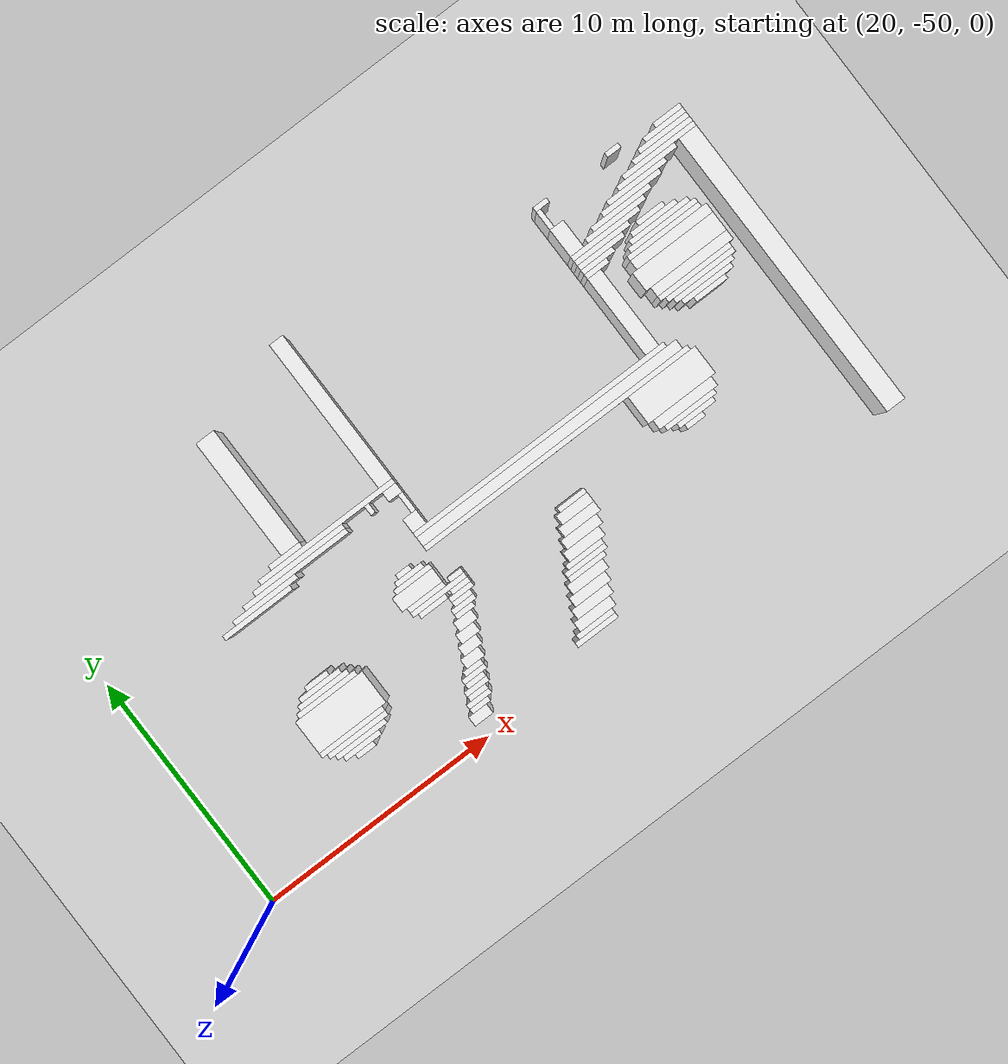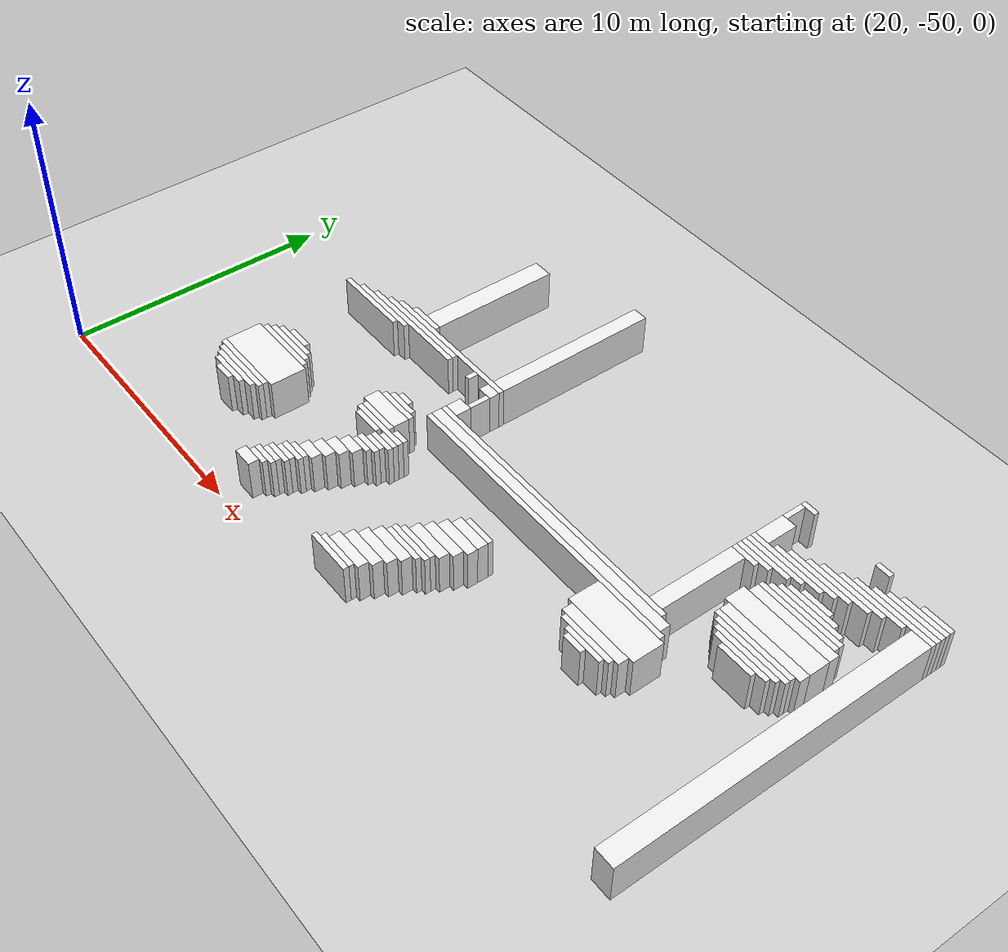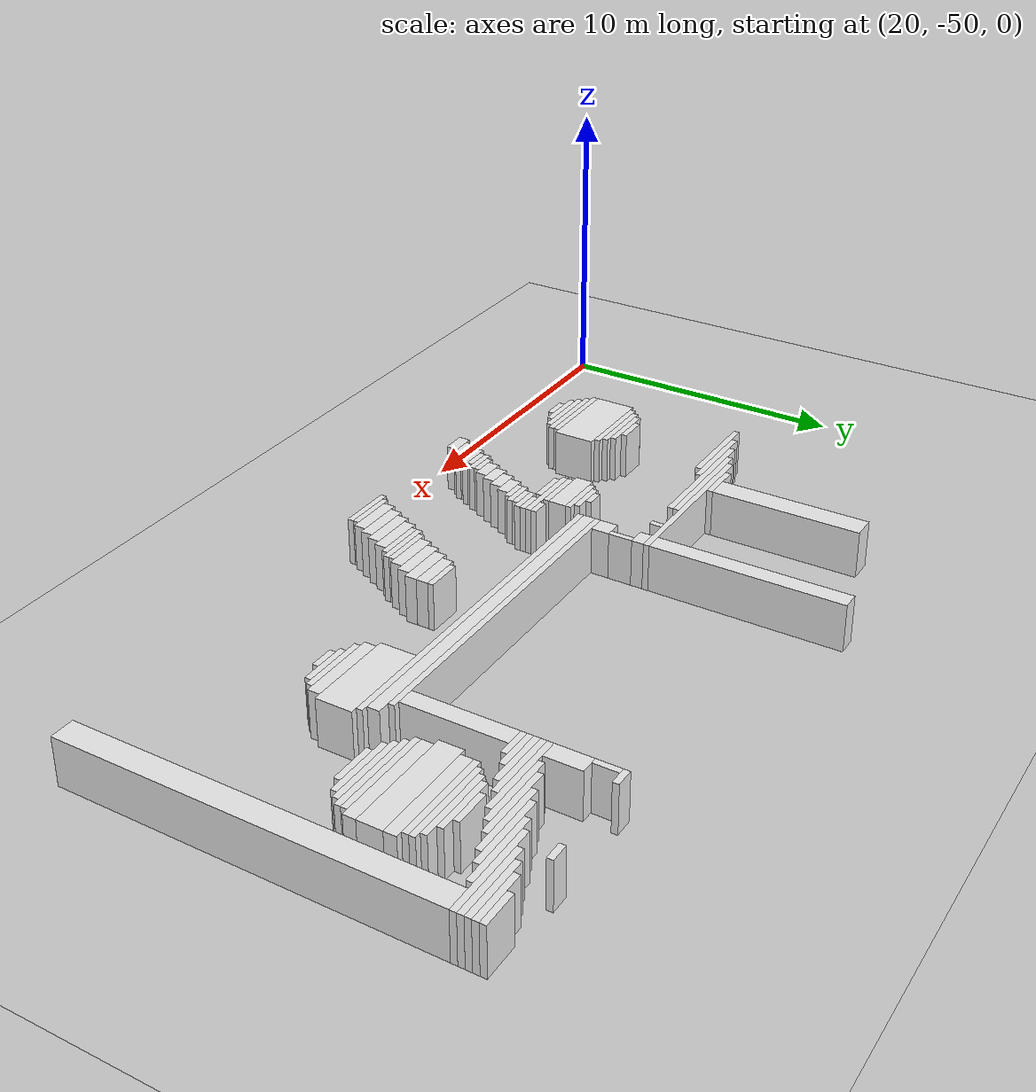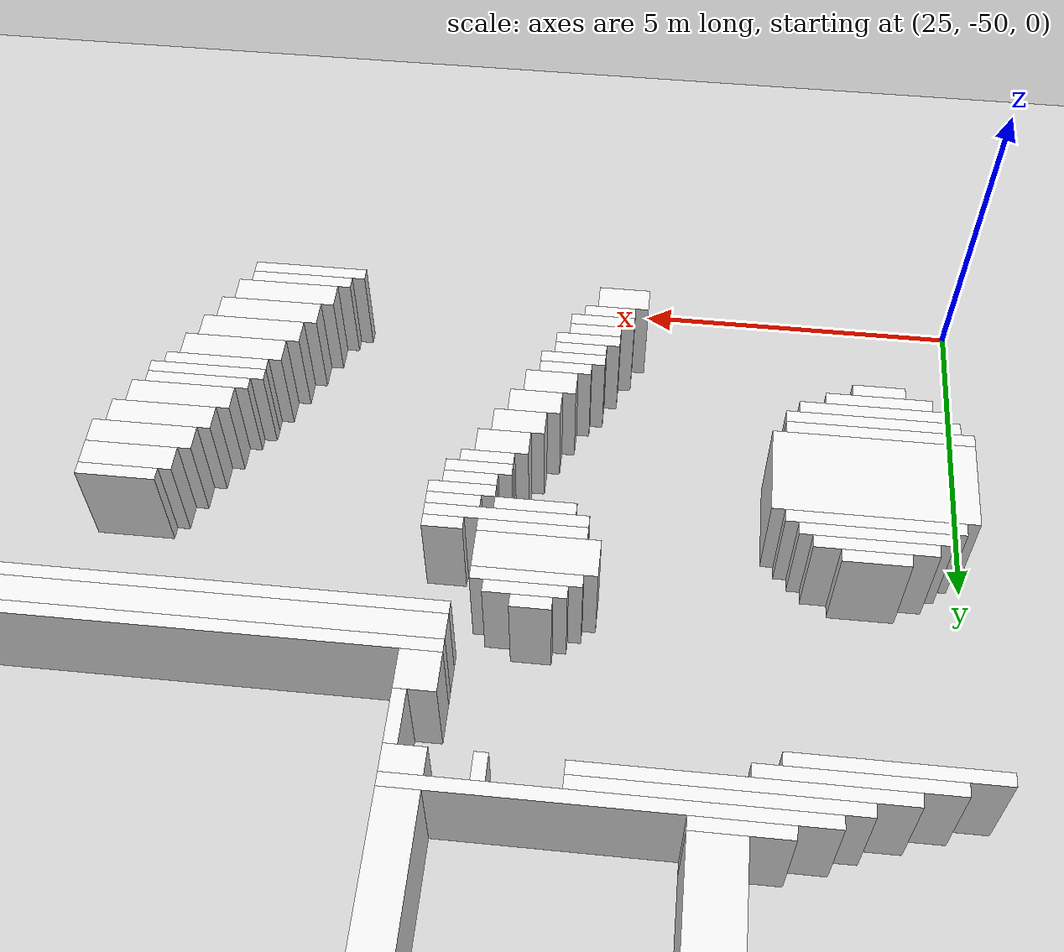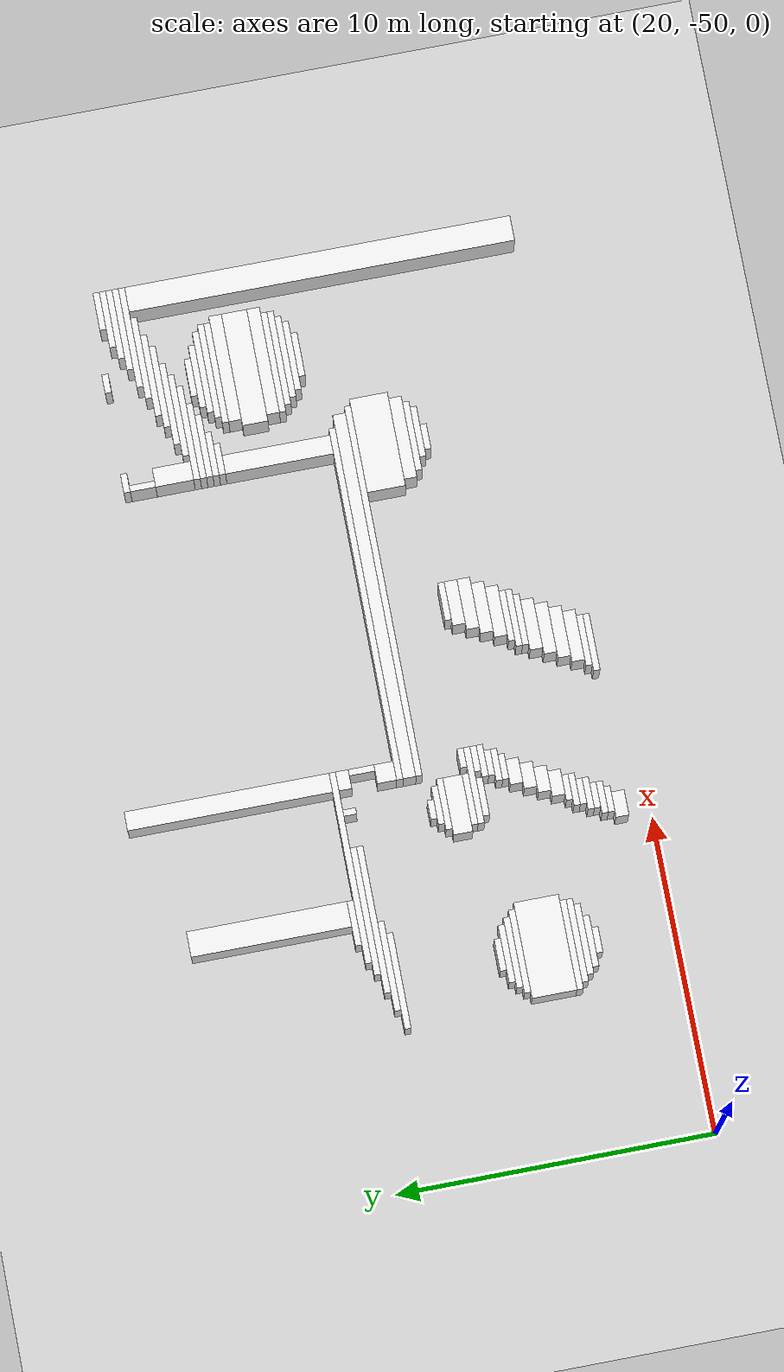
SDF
<sdf version="1.7">
 <world name="default">
  <model name="ground_plane">
   <static>1</static>
   <link name="link">
    <collision name="collision">
     <geometry><plane><normal>0 0 1</normal><size>120 120</size></plane></geometry>
    </collision>
    <visual name="visual">
     <geometry><plane><normal>0 0 1</normal><size>120 120</size></plane></geometry>
     <material>
      <script><uri>file://media/materials/scripts/gazebo.material</uri><name>Gazebo/Grey</name></script>
     </material>
    </visual>
   </link>
  </model>
  <model name="random_complex_01_model">
   <static>1</static>
   <link name="obs_3151">
    <pose>43.1000 -35.9000 0.8000 0 0 0</pose>
    <collision name="obs_3151_col"><geometry><box><size>0.6000 0.2000 1.6000</size></box></geometry></collision>
    <visual name="obs_3151_vis">
     <geometry><box><size>0.6000 0.2000 1.6000</size></box></geometry>
     <material>
      <script><uri>file://media/materials/scripts/gazebo.material</uri><name>Gazebo/White</name></script>
     </material>
    </visual>
   </link>
   <link name="obs_3152">
    <pose>46.3000 -35.9000 0.8000 0 0 0</pose>
    <collision name="obs_3152_col"><geometry><box><size>0.6000 0.2000 1.6000</size></box></geometry></collision>
    <visual name="obs_3152_vis">
     <geometry><box><size>0.6000 0.2000 1.6000</size></box></geometry>
     <material>
      <script><uri>file://media/materials/scripts/gazebo.material</uri><name>Gazebo/White</name></script>
     </material>
    </visual>
   </link>
   <link name="obs_3161">
    <pose>48.6000 -36.1000 0.8000 0 0 0</pose>
    <collision name="obs_3161_col"><geometry><box><size>1.2000 0.2000 1.6000</size></box></geometry></collision>
    <visual name="obs_3161_vis">
     <geometry><box><size>1.2000 0.2000 1.6000</size></box></geometry>
     <material>
      <script><uri>file://media/materials/scripts/gazebo.material</uri><name>Gazebo/White</name></script>
     </material>
    </visual>
   </link>
   <link name="obs_3167">
    <pose>48.3000 -36.3000 0.8000 0 0 0</pose>
    <collision name="obs_3167_col"><geometry><box><size>1.8000 0.2000 1.6000</size></box></geometry></collision>
    <visual name="obs_3167_vis">
     <geometry><box><size>1.8000 0.2000 1.6000</size></box></geometry>
     <material>
      <script><uri>file://media/materials/scripts/gazebo.material</uri><name>Gazebo/White</name></script>
     </material>
    </visual>
   </link>
   <link name="obs_3173">
    <pose>48.1000 -36.5000 0.8000 0 0 0</pose>
    <collision name="obs_3173_col"><geometry><box><size>2.2000 0.2000 1.6000</size></box></geometry></collision>
    <visual name="obs_3173_vis">
     <geometry><box><size>2.2000 0.2000 1.6000</size></box></geometry>
     <material>
      <script><uri>file://media/materials/scripts/gazebo.material</uri><name>Gazebo/White</name></script>
     </material>
    </visual>
   </link>
   <link name="obs_3174">
    <pose>42.9000 -36.4000 0.8000 0 0 0</pose>
    <collision name="obs_3174_col"><geometry><box><size>0.2000 0.8000 1.6000</size></box></geometry></collision>
    <visual name="obs_3174_vis">
     <geometry><box><size>0.2000 0.8000 1.6000</size></box></geometry>
     <material>
      <script><uri>file://media/materials/scripts/gazebo.material</uri><name>Gazebo/White</name></script>
     </material>
    </visual>
   </link>
   <link name="obs_3181">
    <pose>47.9000 -36.7000 0.8000 0 0 0</pose>
    <collision name="obs_3181_col"><geometry><box><size>2.6000 0.2000 1.6000</size></box></geometry></collision>
    <visual name="obs_3181_vis">
     <geometry><box><size>2.6000 0.2000 1.6000</size></box></geometry>
     <material>
      <script><uri>file://media/materials/scripts/gazebo.material</uri><name>Gazebo/White</name></script>
     </material>
    </visual>
   </link>
   <link name="obs_3188">
    <pose>47.6000 -36.9000 0.8000 0 0 0</pose>
    <collision name="obs_3188_col"><geometry><box><size>3.2000 0.2000 1.6000</size></box></geometry></collision>
    <visual name="obs_3188_vis">
     <geometry><box><size>3.2000 0.2000 1.6000</size></box></geometry>
     <material>
      <script><uri>file://media/materials/scripts/gazebo.material</uri><name>Gazebo/White</name></script>
     </material>
    </visual>
   </link>
   <link name="obs_3193">
    <pose>46.9000 -37.1000 0.8000 0 0 0</pose>
    <collision name="obs_3193_col"><geometry><box><size>2.6000 0.2000 1.6000</size></box></geometry></collision>
    <visual name="obs_3193_vis">
     <geometry><box><size>2.6000 0.2000 1.6000</size></box></geometry>
     <material>
      <script><uri>file://media/materials/scripts/gazebo.material</uri><name>Gazebo/White</name></script>
     </material>
    </visual>
   </link>
   <link name="obs_3202">
    <pose>46.3000 -37.3000 0.8000 0 0 0</pose>
    <collision name="obs_3202_col"><geometry><box><size>2.6000 0.2000 1.6000</size></box></geometry></collision>
    <visual name="obs_3202_vis">
     <geometry><box><size>2.6000 0.2000 1.6000</size></box></geometry>
     <material>
      <script><uri>file://media/materials/scripts/gazebo.material</uri><name>Gazebo/White</name></script>
     </material>
    </visual>
   </link>
   <link name="obs_3209">
    <pose>45.9000 -37.5000 0.8000 0 0 0</pose>
    <collision name="obs_3209_col"><geometry><box><size>2.6000 0.2000 1.6000</size></box></geometry></collision>
    <visual name="obs_3209_vis">
     <geometry><box><size>2.6000 0.2000 1.6000</size></box></geometry>
     <material>
      <script><uri>file://media/materials/scripts/gazebo.material</uri><name>Gazebo/White</name></script>
     </material>
    </visual>
   </link>
   <link name="obs_3216">
    <pose>45.3000 -37.7000 0.8000 0 0 0</pose>
    <collision name="obs_3216_col"><geometry><box><size>2.6000 0.2000 1.6000</size></box></geometry></collision>
    <visual name="obs_3216_vis">
     <geometry><box><size>2.6000 0.2000 1.6000</size></box></geometry>
     <material>
      <script><uri>file://media/materials/scripts/gazebo.material</uri><name>Gazebo/White</name></script>
     </material>
    </visual>
   </link>
   <link name="obs_3217">
    <pose>43.1000 -37.4000 0.8000 0 0 0</pose>
    <collision name="obs_3217_col"><geometry><box><size>0.6000 1.2000 1.6000</size></box></geometry></collision>
    <visual name="obs_3217_vis">
     <geometry><box><size>0.6000 1.2000 1.6000</size></box></geometry>
     <material>
      <script><uri>file://media/materials/scripts/gazebo.material</uri><name>Gazebo/White</name></script>
     </material>
    </visual>
   </link>
   <link name="obs_3225">
    <pose>44.9000 -37.9000 0.8000 0 0 0</pose>
    <collision name="obs_3225_col"><geometry><box><size>2.6000 0.2000 1.6000</size></box></geometry></collision>
    <visual name="obs_3225_vis">
     <geometry><box><size>2.6000 0.2000 1.6000</size></box></geometry>
     <material>
      <script><uri>file://media/materials/scripts/gazebo.material</uri><name>Gazebo/White</name></script>
     </material>
    </visual>
   </link>
   <link name="obs_3234">
    <pose>44.3000 -38.1000 0.8000 0 0 0</pose>
    <collision name="obs_3234_col"><geometry><box><size>3.0000 0.2000 1.6000</size></box></geometry></collision>
    <visual name="obs_3234_vis">
     <geometry><box><size>3.0000 0.2000 1.6000</size></box></geometry>
     <material>
      <script><uri>file://media/materials/scripts/gazebo.material</uri><name>Gazebo/White</name></script>
     </material>
    </visual>
   </link>
   <link name="obs_3242">
    <pose>44.0000 -38.3000 0.8000 0 0 0</pose>
    <collision name="obs_3242_col"><geometry><box><size>2.4000 0.2000 1.6000</size></box></geometry></collision>
    <visual name="obs_3242_vis">
     <geometry><box><size>2.4000 0.2000 1.6000</size></box></geometry>
     <material>
      <script><uri>file://media/materials/scripts/gazebo.material</uri><name>Gazebo/White</name></script>
     </material>
    </visual>
   </link>
   <link name="obs_3251">
    <pose>43.8000 -38.5000 0.8000 0 0 0</pose>
    <collision name="obs_3251_col"><geometry><box><size>2.0000 0.2000 1.6000</size></box></geometry></collision>
    <visual name="obs_3251_vis">
     <geometry><box><size>2.0000 0.2000 1.6000</size></box></geometry>
     <material>
      <script><uri>file://media/materials/scripts/gazebo.material</uri><name>Gazebo/White</name></script>
     </material>
    </visual>
   </link>
   <link name="obs_3252">
    <pose>46.0000 -38.5000 0.8000 0 0 0</pose>
    <collision name="obs_3252_col"><geometry><box><size>1.2000 0.2000 1.6000</size></box></geometry></collision>
    <visual name="obs_3252_vis">
     <geometry><box><size>1.2000 0.2000 1.6000</size></box></geometry>
     <material>
      <script><uri>file://media/materials/scripts/gazebo.material</uri><name>Gazebo/White</name></script>
     </material>
    </visual>
   </link>
   <link name="obs_3256">
    <pose>43.5000 -38.7000 0.8000 0 0 0</pose>
    <collision name="obs_3256_col"><geometry><box><size>1.4000 0.2000 1.6000</size></box></geometry></collision>
    <visual name="obs_3256_vis">
     <geometry><box><size>1.4000 0.2000 1.6000</size></box></geometry>
     <material>
      <script><uri>file://media/materials/scripts/gazebo.material</uri><name>Gazebo/White</name></script>
     </material>
    </visual>
   </link>
   <link name="obs_3257">
    <pose>46.0000 -38.7000 0.8000 0 0 0</pose>
    <collision name="obs_3257_col"><geometry><box><size>2.0000 0.2000 1.6000</size></box></geometry></collision>
    <visual name="obs_3257_vis">
     <geometry><box><size>2.0000 0.2000 1.6000</size></box></geometry>
     <material>
      <script><uri>file://media/materials/scripts/gazebo.material</uri><name>Gazebo/White</name></script>
     </material>
    </visual>
   </link>
   <link name="obs_3264">
    <pose>43.3000 -38.9000 0.8000 0 0 0</pose>
    <collision name="obs_3264_col"><geometry><box><size>1.0000 0.2000 1.6000</size></box></geometry></collision>
    <visual name="obs_3264_vis">
     <geometry><box><size>1.0000 0.2000 1.6000</size></box></geometry>
     <material>
      <script><uri>file://media/materials/scripts/gazebo.material</uri><name>Gazebo/White</name></script>
     </material>
    </visual>
   </link>
   <link name="obs_3265">
    <pose>46.1000 -38.9000 0.8000 0 0 0</pose>
    <collision name="obs_3265_col"><geometry><box><size>2.6000 0.2000 1.6000</size></box></geometry></collision>
    <visual name="obs_3265_vis">
     <geometry><box><size>2.6000 0.2000 1.6000</size></box></geometry>
     <material>
      <script><uri>file://media/materials/scripts/gazebo.material</uri><name>Gazebo/White</name></script>
     </material>
    </visual>
   </link>
   <link name="obs_3271">
    <pose>46.1000 -39.1000 0.8000 0 0 0</pose>
    <collision name="obs_3271_col"><geometry><box><size>3.0000 0.2000 1.6000</size></box></geometry></collision>
    <visual name="obs_3271_vis">
     <geometry><box><size>3.0000 0.2000 1.6000</size></box></geometry>
     <material>
      <script><uri>file://media/materials/scripts/gazebo.material</uri><name>Gazebo/White</name></script>
     </material>
    </visual>
   </link>
   <link name="obs_3279">
    <pose>46.0000 -39.3000 0.8000 0 0 0</pose>
    <collision name="obs_3279_col"><geometry><box><size>3.2000 0.2000 1.6000</size></box></geometry></collision>
    <visual name="obs_3279_vis">
     <geometry><box><size>3.2000 0.2000 1.6000</size></box></geometry>
     <material>
      <script><uri>file://media/materials/scripts/gazebo.material</uri><name>Gazebo/White</name></script>
     </material>
    </visual>
   </link>
   <link name="obs_3288">
    <pose>46.1000 -39.6000 0.8000 0 0 0</pose>
    <collision name="obs_3288_col"><geometry><box><size>3.4000 0.4000 1.6000</size></box></geometry></collision>
    <visual name="obs_3288_vis">
     <geometry><box><size>3.4000 0.4000 1.6000</size></box></geometry>
     <material>
      <script><uri>file://media/materials/scripts/gazebo.material</uri><name>Gazebo/White</name></script>
     </material>
    </visual>
   </link>
   <link name="obs_3297">
    <pose>28.6000 -37.7000 0.8000 0 0 0</pose>
    <collision name="obs_3297_col"><geometry><box><size>0.8000 5.0000 1.6000</size></box></geometry></collision>
    <visual name="obs_3297_vis">
     <geometry><box><size>0.8000 5.0000 1.6000</size></box></geometry>
     <material>
      <script><uri>file://media/materials/scripts/gazebo.material</uri><name>Gazebo/White</name></script>
     </material>
    </visual>
   </link>
   <link name="obs_3304">
    <pose>32.7000 -37.2000 0.8000 0 0 0</pose>
    <collision name="obs_3304_col"><geometry><box><size>0.6000 6.4000 1.6000</size></box></geometry></collision>
    <visual name="obs_3304_vis">
     <geometry><box><size>0.6000 6.4000 1.6000</size></box></geometry>
     <material>
      <script><uri>file://media/materials/scripts/gazebo.material</uri><name>Gazebo/White</name></script>
     </material>
    </visual>
   </link>
   <link name="obs_3312">
    <pose>28.3000 -40.3000 0.8000 0 0 0</pose>
    <collision name="obs_3312_col"><geometry><box><size>1.4000 0.2000 1.6000</size></box></geometry></collision>
    <visual name="obs_3312_vis">
     <geometry><box><size>1.4000 0.2000 1.6000</size></box></geometry>
     <material>
      <script><uri>file://media/materials/scripts/gazebo.material</uri><name>Gazebo/White</name></script>
     </material>
    </visual>
   </link>
   <link name="obs_3313">
    <pose>46.0000 -40.2000 0.8000 0 0 0</pose>
    <collision name="obs_3313_col"><geometry><box><size>3.6000 0.8000 1.6000</size></box></geometry></collision>
    <visual name="obs_3313_vis">
     <geometry><box><size>3.6000 0.8000 1.6000</size></box></geometry>
     <material>
      <script><uri>file://media/materials/scripts/gazebo.material</uri><name>Gazebo/White</name></script>
     </material>
    </visual>
   </link>
   <link name="obs_3320">
    <pose>30.0000 -40.5000 0.8000 0 0 0</pose>
    <collision name="obs_3320_col"><geometry><box><size>6.0000 0.2000 1.6000</size></box></geometry></collision>
    <visual name="obs_3320_vis">
     <geometry><box><size>6.0000 0.2000 1.6000</size></box></geometry>
     <material>
      <script><uri>file://media/materials/scripts/gazebo.material</uri><name>Gazebo/White</name></script>
     </material>
    </visual>
   </link>
   <link name="obs_3330">
    <pose>28.6000 -40.7000 0.8000 0 0 0</pose>
    <collision name="obs_3330_col"><geometry><box><size>4.0000 0.2000 1.6000</size></box></geometry></collision>
    <visual name="obs_3330_vis">
     <geometry><box><size>4.0000 0.2000 1.6000</size></box></geometry>
     <material>
      <script><uri>file://media/materials/scripts/gazebo.material</uri><name>Gazebo/White</name></script>
     </material>
    </visual>
   </link>
   <link name="obs_3331">
    <pose>31.7000 -40.8000 0.8000 0 0 0</pose>
    <collision name="obs_3331_col"><geometry><box><size>0.2000 0.4000 1.6000</size></box></geometry></collision>
    <visual name="obs_3331_vis">
     <geometry><box><size>0.2000 0.4000 1.6000</size></box></geometry>
     <material>
      <script><uri>file://media/materials/scripts/gazebo.material</uri><name>Gazebo/White</name></script>
     </material>
    </visual>
   </link>
   <link name="obs_3332">
    <pose>32.7000 -40.8000 0.8000 0 0 0</pose>
    <collision name="obs_3332_col"><geometry><box><size>0.6000 0.4000 1.6000</size></box></geometry></collision>
    <visual name="obs_3332_vis">
     <geometry><box><size>0.6000 0.4000 1.6000</size></box></geometry>
     <material>
      <script><uri>file://media/materials/scripts/gazebo.material</uri><name>Gazebo/White</name></script>
     </material>
    </visual>
   </link>
   <link name="obs_3333">
    <pose>46.1000 -40.8000 0.8000 0 0 0</pose>
    <collision name="obs_3333_col"><geometry><box><size>3.4000 0.4000 1.6000</size></box></geometry></collision>
    <visual name="obs_3333_vis">
     <geometry><box><size>3.4000 0.4000 1.6000</size></box></geometry>
     <material>
      <script><uri>file://media/materials/scripts/gazebo.material</uri><name>Gazebo/White</name></script>
     </material>
    </visual>
   </link>
   <link name="obs_3339">
    <pose>28.3000 -40.9000 0.8000 0 0 0</pose>
    <collision name="obs_3339_col"><geometry><box><size>4.6000 0.2000 1.6000</size></box></geometry></collision>
    <visual name="obs_3339_vis">
     <geometry><box><size>4.6000 0.2000 1.6000</size></box></geometry>
     <material>
      <script><uri>file://media/materials/scripts/gazebo.material</uri><name>Gazebo/White</name></script>
     </material>
    </visual>
   </link>
   <link name="obs_3346">
    <pose>26.8000 -41.1000 0.8000 0 0 0</pose>
    <collision name="obs_3346_col"><geometry><box><size>2.8000 0.2000 1.6000</size></box></geometry></collision>
    <visual name="obs_3346_vis">
     <geometry><box><size>2.8000 0.2000 1.6000</size></box></geometry>
     <material>
      <script><uri>file://media/materials/scripts/gazebo.material</uri><name>Gazebo/White</name></script>
     </material>
    </visual>
   </link>
   <link name="obs_3347">
    <pose>46.0000 -41.1000 0.8000 0 0 0</pose>
    <collision name="obs_3347_col"><geometry><box><size>3.2000 0.2000 1.6000</size></box></geometry></collision>
    <visual name="obs_3347_vis">
     <geometry><box><size>3.2000 0.2000 1.6000</size></box></geometry>
     <material>
      <script><uri>file://media/materials/scripts/gazebo.material</uri><name>Gazebo/White</name></script>
     </material>
    </visual>
   </link>
   <link name="obs_3352">
    <pose>26.3000 -41.3000 0.8000 0 0 0</pose>
    <collision name="obs_3352_col"><geometry><box><size>3.0000 0.2000 1.6000</size></box></geometry></collision>
    <visual name="obs_3352_vis">
     <geometry><box><size>3.0000 0.2000 1.6000</size></box></geometry>
     <material>
      <script><uri>file://media/materials/scripts/gazebo.material</uri><name>Gazebo/White</name></script>
     </material>
    </visual>
   </link>
   <link name="obs_3353">
    <pose>46.1000 -41.3000 0.8000 0 0 0</pose>
    <collision name="obs_3353_col"><geometry><box><size>3.0000 0.2000 1.6000</size></box></geometry></collision>
    <visual name="obs_3353_vis">
     <geometry><box><size>3.0000 0.2000 1.6000</size></box></geometry>
     <material>
      <script><uri>file://media/materials/scripts/gazebo.material</uri><name>Gazebo/White</name></script>
     </material>
    </visual>
   </link>
   <link name="obs_3361">
    <pose>46.1000 -41.5000 0.8000 0 0 0</pose>
    <collision name="obs_3361_col"><geometry><box><size>2.6000 0.2000 1.6000</size></box></geometry></collision>
    <visual name="obs_3361_vis">
     <geometry><box><size>2.6000 0.2000 1.6000</size></box></geometry>
     <material>
      <script><uri>file://media/materials/scripts/gazebo.material</uri><name>Gazebo/White</name></script>
     </material>
    </visual>
   </link>
   <link name="obs_3362">
    <pose>32.9000 -41.4000 0.8000 0 0 0</pose>
    <collision name="obs_3362_col"><geometry><box><size>0.2000 0.8000 1.6000</size></box></geometry></collision>
    <visual name="obs_3362_vis">
     <geometry><box><size>0.2000 0.8000 1.6000</size></box></geometry>
     <material>
      <script><uri>file://media/materials/scripts/gazebo.material</uri><name>Gazebo/White</name></script>
     </material>
    </visual>
   </link>
   <link name="obs_3368">
    <pose>46.1000 -41.7000 0.8000 0 0 0</pose>
    <collision name="obs_3368_col"><geometry><box><size>2.2000 0.2000 1.6000</size></box></geometry></collision>
    <visual name="obs_3368_vis">
     <geometry><box><size>2.2000 0.2000 1.6000</size></box></geometry>
     <material>
      <script><uri>file://media/materials/scripts/gazebo.material</uri><name>Gazebo/White</name></script>
     </material>
    </visual>
   </link>
   <link name="obs_3377">
    <pose>46.1000 -41.9000 0.8000 0 0 0</pose>
    <collision name="obs_3377_col"><geometry><box><size>1.4000 0.2000 1.6000</size></box></geometry></collision>
    <visual name="obs_3377_vis">
     <geometry><box><size>1.4000 0.2000 1.6000</size></box></geometry>
     <material>
      <script><uri>file://media/materials/scripts/gazebo.material</uri><name>Gazebo/White</name></script>
     </material>
    </visual>
   </link>
   <link name="obs_3385">
    <pose>43.1000 -40.7000 0.8000 0 0 0</pose>
    <collision name="obs_3385_col"><geometry><box><size>0.6000 3.4000 1.6000</size></box></geometry></collision>
    <visual name="obs_3385_vis">
     <geometry><box><size>0.6000 3.4000 1.6000</size></box></geometry>
     <material>
      <script><uri>file://media/materials/scripts/gazebo.material</uri><name>Gazebo/White</name></script>
     </material>
    </visual>
   </link>
   <link name="obs_3386">
    <pose>32.7000 -42.1000 0.8000 0 0 0</pose>
    <collision name="obs_3386_col"><geometry><box><size>0.6000 0.6000 1.6000</size></box></geometry></collision>
    <visual name="obs_3386_vis">
     <geometry><box><size>0.6000 0.6000 1.6000</size></box></geometry>
     <material>
      <script><uri>file://media/materials/scripts/gazebo.material</uri><name>Gazebo/White</name></script>
     </material>
    </visual>
   </link>
   <link name="obs_3402">
    <pose>38.0000 -42.5000 0.8000 0 0 0</pose>
    <collision name="obs_3402_col"><geometry><box><size>11.2000 0.2000 1.6000</size></box></geometry></collision>
    <visual name="obs_3402_vis">
     <geometry><box><size>11.2000 0.2000 1.6000</size></box></geometry>
     <material>
      <script><uri>file://media/materials/scripts/gazebo.material</uri><name>Gazebo/White</name></script>
     </material>
    </visual>
   </link>
   <link name="obs_3410">
    <pose>38.2000 -42.8000 0.8000 0 0 0</pose>
    <collision name="obs_3410_col"><geometry><box><size>11.6000 0.4000 1.6000</size></box></geometry></collision>
    <visual name="obs_3410_vis">
     <geometry><box><size>11.6000 0.4000 1.6000</size></box></geometry>
     <material>
      <script><uri>file://media/materials/scripts/gazebo.material</uri><name>Gazebo/White</name></script>
     </material>
    </visual>
   </link>
   <link name="obs_3421">
    <pose>38.3000 -43.1000 0.8000 0 0 0</pose>
    <collision name="obs_3421_col"><geometry><box><size>11.8000 0.2000 1.6000</size></box></geometry></collision>
    <visual name="obs_3421_vis">
     <geometry><box><size>11.8000 0.2000 1.6000</size></box></geometry>
     <material>
      <script><uri>file://media/materials/scripts/gazebo.material</uri><name>Gazebo/White</name></script>
     </material>
    </visual>
   </link>
   <link name="obs_3428">
    <pose>31.3000 -43.3000 0.8000 0 0 0</pose>
    <collision name="obs_3428_col"><geometry><box><size>0.6000 0.2000 1.6000</size></box></geometry></collision>
    <visual name="obs_3428_vis">
     <geometry><box><size>0.6000 0.2000 1.6000</size></box></geometry>
     <material>
      <script><uri>file://media/materials/scripts/gazebo.material</uri><name>Gazebo/White</name></script>
     </material>
    </visual>
   </link>
   <link name="obs_3433">
    <pose>31.4000 -43.5000 0.8000 0 0 0</pose>
    <collision name="obs_3433_col"><geometry><box><size>1.2000 0.2000 1.6000</size></box></geometry></collision>
    <visual name="obs_3433_vis">
     <geometry><box><size>1.2000 0.2000 1.6000</size></box></geometry>
     <material>
      <script><uri>file://media/materials/scripts/gazebo.material</uri><name>Gazebo/White</name></script>
     </material>
    </visual>
   </link>
   <link name="obs_3438">
    <pose>31.4000 -43.7000 0.8000 0 0 0</pose>
    <collision name="obs_3438_col"><geometry><box><size>1.6000 0.2000 1.6000</size></box></geometry></collision>
    <visual name="obs_3438_vis">
     <geometry><box><size>1.6000 0.2000 1.6000</size></box></geometry>
     <material>
      <script><uri>file://media/materials/scripts/gazebo.material</uri><name>Gazebo/White</name></script>
     </material>
    </visual>
   </link>
   <link name="obs_3448">
    <pose>42.9000 -43.8000 0.8000 0 0 0</pose>
    <collision name="obs_3448_col"><geometry><box><size>3.0000 1.2000 1.6000</size></box></geometry></collision>
    <visual name="obs_3448_vis">
     <geometry><box><size>3.0000 1.2000 1.6000</size></box></geometry>
     <material>
      <script><uri>file://media/materials/scripts/gazebo.material</uri><name>Gazebo/White</name></script>
     </material>
    </visual>
   </link>
   <link name="obs_3449">
    <pose>31.3000 -44.1000 0.8000 0 0 0</pose>
    <collision name="obs_3449_col"><geometry><box><size>1.8000 0.6000 1.6000</size></box></geometry></collision>
    <visual name="obs_3449_vis">
     <geometry><box><size>1.8000 0.6000 1.6000</size></box></geometry>
     <material>
      <script><uri>file://media/materials/scripts/gazebo.material</uri><name>Gazebo/White</name></script>
     </material>
    </visual>
   </link>
   <link name="obs_3454">
    <pose>26.5000 -44.5000 0.8000 0 0 0</pose>
    <collision name="obs_3454_col"><geometry><box><size>1.0000 0.2000 1.6000</size></box></geometry></collision>
    <visual name="obs_3454_vis">
     <geometry><box><size>1.0000 0.2000 1.6000</size></box></geometry>
     <material>
      <script><uri>file://media/materials/scripts/gazebo.material</uri><name>Gazebo/White</name></script>
     </material>
    </visual>
   </link>
   <link name="obs_3455">
    <pose>31.4000 -44.5000 0.8000 0 0 0</pose>
    <collision name="obs_3455_col"><geometry><box><size>1.6000 0.2000 1.6000</size></box></geometry></collision>
    <visual name="obs_3455_vis">
     <geometry><box><size>1.6000 0.2000 1.6000</size></box></geometry>
     <material>
      <script><uri>file://media/materials/scripts/gazebo.material</uri><name>Gazebo/White</name></script>
     </material>
    </visual>
   </link>
   <link name="obs_3456">
    <pose>32.7000 -44.5000 0.8000 0 0 0</pose>
    <collision name="obs_3456_col"><geometry><box><size>0.6000 0.2000 1.6000</size></box></geometry></collision>
    <visual name="obs_3456_vis">
     <geometry><box><size>0.6000 0.2000 1.6000</size></box></geometry>
     <material>
      <script><uri>file://media/materials/scripts/gazebo.material</uri><name>Gazebo/White</name></script>
     </material>
    </visual>
   </link>
   <link name="obs_3460">
    <pose>42.9000 -44.6000 0.8000 0 0 0</pose>
    <collision name="obs_3460_col"><geometry><box><size>2.6000 0.4000 1.6000</size></box></geometry></collision>
    <visual name="obs_3460_vis">
     <geometry><box><size>2.6000 0.4000 1.6000</size></box></geometry>
     <material>
      <script><uri>file://media/materials/scripts/gazebo.material</uri><name>Gazebo/White</name></script>
     </material>
    </visual>
   </link>
   <link name="obs_3461">
    <pose>26.5000 -44.7000 0.8000 0 0 0</pose>
    <collision name="obs_3461_col"><geometry><box><size>1.8000 0.2000 1.6000</size></box></geometry></collision>
    <visual name="obs_3461_vis">
     <geometry><box><size>1.8000 0.2000 1.6000</size></box></geometry>
     <material>
      <script><uri>file://media/materials/scripts/gazebo.material</uri><name>Gazebo/White</name></script>
     </material>
    </visual>
   </link>
   <link name="obs_3462">
    <pose>31.8000 -44.7000 0.8000 0 0 0</pose>
    <collision name="obs_3462_col"><geometry><box><size>2.4000 0.2000 1.6000</size></box></geometry></collision>
    <visual name="obs_3462_vis">
     <geometry><box><size>2.4000 0.2000 1.6000</size></box></geometry>
     <material>
      <script><uri>file://media/materials/scripts/gazebo.material</uri><name>Gazebo/White</name></script>
     </material>
    </visual>
   </link>
   <link name="obs_3468">
    <pose>26.5000 -44.9000 0.8000 0 0 0</pose>
    <collision name="obs_3468_col"><geometry><box><size>2.2000 0.2000 1.6000</size></box></geometry></collision>
    <visual name="obs_3468_vis">
     <geometry><box><size>2.2000 0.2000 1.6000</size></box></geometry>
     <material>
      <script><uri>file://media/materials/scripts/gazebo.material</uri><name>Gazebo/White</name></script>
     </material>
    </visual>
   </link>
   <link name="obs_3469">
    <pose>31.4000 -44.9000 0.8000 0 0 0</pose>
    <collision name="obs_3469_col"><geometry><box><size>1.2000 0.2000 1.6000</size></box></geometry></collision>
    <visual name="obs_3469_vis">
     <geometry><box><size>1.2000 0.2000 1.6000</size></box></geometry>
     <material>
      <script><uri>file://media/materials/scripts/gazebo.material</uri><name>Gazebo/White</name></script>
     </material>
    </visual>
   </link>
   <link name="obs_3470">
    <pose>32.6000 -44.9000 0.8000 0 0 0</pose>
    <collision name="obs_3470_col"><geometry><box><size>0.8000 0.2000 1.6000</size></box></geometry></collision>
    <visual name="obs_3470_vis">
     <geometry><box><size>0.8000 0.2000 1.6000</size></box></geometry>
     <material>
      <script><uri>file://media/materials/scripts/gazebo.material</uri><name>Gazebo/White</name></script>
     </material>
    </visual>
   </link>
   <link name="obs_3471">
    <pose>37.6000 -44.9000 0.8000 0 0 0</pose>
    <collision name="obs_3471_col"><geometry><box><size>1.2000 0.2000 1.6000</size></box></geometry></collision>
    <visual name="obs_3471_vis">
     <geometry><box><size>1.2000 0.2000 1.6000</size></box></geometry>
     <material>
      <script><uri>file://media/materials/scripts/gazebo.material</uri><name>Gazebo/White</name></script>
     </material>
    </visual>
   </link>
   <link name="obs_3472">
    <pose>42.9000 -44.9000 0.8000 0 0 0</pose>
    <collision name="obs_3472_col"><geometry><box><size>2.2000 0.2000 1.6000</size></box></geometry></collision>
    <visual name="obs_3472_vis">
     <geometry><box><size>2.2000 0.2000 1.6000</size></box></geometry>
     <material>
      <script><uri>file://media/materials/scripts/gazebo.material</uri><name>Gazebo/White</name></script>
     </material>
    </visual>
   </link>
   <link name="obs_3477">
    <pose>26.5000 -45.1000 0.8000 0 0 0</pose>
    <collision name="obs_3477_col"><geometry><box><size>2.6000 0.2000 1.6000</size></box></geometry></collision>
    <visual name="obs_3477_vis">
     <geometry><box><size>2.6000 0.2000 1.6000</size></box></geometry>
     <material>
      <script><uri>file://media/materials/scripts/gazebo.material</uri><name>Gazebo/White</name></script>
     </material>
    </visual>
   </link>
   <link name="obs_3478">
    <pose>32.5000 -45.1000 0.8000 0 0 0</pose>
    <collision name="obs_3478_col"><geometry><box><size>1.0000 0.2000 1.6000</size></box></geometry></collision>
    <visual name="obs_3478_vis">
     <geometry><box><size>1.0000 0.2000 1.6000</size></box></geometry>
     <material>
      <script><uri>file://media/materials/scripts/gazebo.material</uri><name>Gazebo/White</name></script>
     </material>
    </visual>
   </link>
   <link name="obs_3479">
    <pose>43.0000 -45.1000 0.8000 0 0 0</pose>
    <collision name="obs_3479_col"><geometry><box><size>1.6000 0.2000 1.6000</size></box></geometry></collision>
    <visual name="obs_3479_vis">
     <geometry><box><size>1.6000 0.2000 1.6000</size></box></geometry>
     <material>
      <script><uri>file://media/materials/scripts/gazebo.material</uri><name>Gazebo/White</name></script>
     </material>
    </visual>
   </link>
   <link name="obs_3480">
    <pose>37.5000 -45.2000 0.8000 0 0 0</pose>
    <collision name="obs_3480_col"><geometry><box><size>1.4000 0.4000 1.6000</size></box></geometry></collision>
    <visual name="obs_3480_vis">
     <geometry><box><size>1.4000 0.4000 1.6000</size></box></geometry>
     <material>
      <script><uri>file://media/materials/scripts/gazebo.material</uri><name>Gazebo/White</name></script>
     </material>
    </visual>
   </link>
   <link name="obs_3486">
    <pose>32.4000 -45.3000 0.8000 0 0 0</pose>
    <collision name="obs_3486_col"><geometry><box><size>0.8000 0.2000 1.6000</size></box></geometry></collision>
    <visual name="obs_3486_vis">
     <geometry><box><size>0.8000 0.2000 1.6000</size></box></geometry>
     <material>
      <script><uri>file://media/materials/scripts/gazebo.material</uri><name>Gazebo/White</name></script>
     </material>
    </visual>
   </link>
   <link name="obs_3487">
    <pose>42.8000 -45.3000 0.8000 0 0 0</pose>
    <collision name="obs_3487_col"><geometry><box><size>0.8000 0.2000 1.6000</size></box></geometry></collision>
    <visual name="obs_3487_vis">
     <geometry><box><size>0.8000 0.2000 1.6000</size></box></geometry>
     <material>
      <script><uri>file://media/materials/scripts/gazebo.material</uri><name>Gazebo/White</name></script>
     </material>
    </visual>
   </link>
   <link name="obs_3495">
    <pose>32.3000 -45.5000 0.8000 0 0 0</pose>
    <collision name="obs_3495_col"><geometry><box><size>1.0000 0.2000 1.6000</size></box></geometry></collision>
    <visual name="obs_3495_vis">
     <geometry><box><size>1.0000 0.2000 1.6000</size></box></geometry>
     <material>
      <script><uri>file://media/materials/scripts/gazebo.material</uri><name>Gazebo/White</name></script>
     </material>
    </visual>
   </link>
   <link name="obs_3497">
    <pose>37.4000 -45.6000 0.8000 0 0 0</pose>
    <collision name="obs_3497_col"><geometry><box><size>1.6000 0.4000 1.6000</size></box></geometry></collision>
    <visual name="obs_3497_vis">
     <geometry><box><size>1.6000 0.4000 1.6000</size></box></geometry>
     <material>
      <script><uri>file://media/materials/scripts/gazebo.material</uri><name>Gazebo/White</name></script>
     </material>
    </visual>
   </link>
   <link name="obs_3504">
    <pose>32.2000 -45.7000 0.8000 0 0 0</pose>
    <collision name="obs_3504_col"><geometry><box><size>0.8000 0.2000 1.6000</size></box></geometry></collision>
    <visual name="obs_3504_vis">
     <geometry><box><size>0.8000 0.2000 1.6000</size></box></geometry>
     <material>
      <script><uri>file://media/materials/scripts/gazebo.material</uri><name>Gazebo/White</name></script>
     </material>
    </visual>
   </link>
   <link name="obs_3512">
    <pose>32.0000 -46.0000 0.8000 0 0 0</pose>
    <collision name="obs_3512_col"><geometry><box><size>0.8000 0.4000 1.6000</size></box></geometry></collision>
    <visual name="obs_3512_vis">
     <geometry><box><size>0.8000 0.4000 1.6000</size></box></geometry>
     <material>
      <script><uri>file://media/materials/scripts/gazebo.material</uri><name>Gazebo/White</name></script>
     </material>
    </visual>
   </link>
   <link name="obs_3513">
    <pose>37.2000 -46.0000 0.8000 0 0 0</pose>
    <collision name="obs_3513_col"><geometry><box><size>1.6000 0.4000 1.6000</size></box></geometry></collision>
    <visual name="obs_3513_vis">
     <geometry><box><size>1.6000 0.4000 1.6000</size></box></geometry>
     <material>
      <script><uri>file://media/materials/scripts/gazebo.material</uri><name>Gazebo/White</name></script>
     </material>
    </visual>
   </link>
   <link name="obs_3521">
    <pose>26.5000 -45.9000 0.8000 0 0 0</pose>
    <collision name="obs_3521_col"><geometry><box><size>3.0000 1.4000 1.6000</size></box></geometry></collision>
    <visual name="obs_3521_vis">
     <geometry><box><size>3.0000 1.4000 1.6000</size></box></geometry>
     <material>
      <script><uri>file://media/materials/scripts/gazebo.material</uri><name>Gazebo/White</name></script>
     </material>
    </visual>
   </link>
   <link name="obs_3525">
    <pose>31.8000 -46.4000 0.8000 0 0 0</pose>
    <collision name="obs_3525_col"><geometry><box><size>0.8000 0.4000 1.6000</size></box></geometry></collision>
    <visual name="obs_3525_vis">
     <geometry><box><size>0.8000 0.4000 1.6000</size></box></geometry>
     <material>
      <script><uri>file://media/materials/scripts/gazebo.material</uri><name>Gazebo/White</name></script>
     </material>
    </visual>
   </link>
   <link name="obs_3526">
    <pose>37.0000 -46.4000 0.8000 0 0 0</pose>
    <collision name="obs_3526_col"><geometry><box><size>1.6000 0.4000 1.6000</size></box></geometry></collision>
    <visual name="obs_3526_vis">
     <geometry><box><size>1.6000 0.4000 1.6000</size></box></geometry>
     <material>
      <script><uri>file://media/materials/scripts/gazebo.material</uri><name>Gazebo/White</name></script>
     </material>
    </visual>
   </link>
   <link name="obs_3534">
    <pose>26.4000 -46.7000 0.8000 0 0 0</pose>
    <collision name="obs_3534_col"><geometry><box><size>2.8000 0.2000 1.6000</size></box></geometry></collision>
    <visual name="obs_3534_vis">
     <geometry><box><size>2.8000 0.2000 1.6000</size></box></geometry>
     <material>
      <script><uri>file://media/materials/scripts/gazebo.material</uri><name>Gazebo/White</name></script>
     </material>
    </visual>
   </link>
   <link name="obs_3535">
    <pose>36.8000 -46.7000 0.8000 0 0 0</pose>
    <collision name="obs_3535_col"><geometry><box><size>1.6000 0.2000 1.6000</size></box></geometry></collision>
    <visual name="obs_3535_vis">
     <geometry><box><size>1.6000 0.2000 1.6000</size></box></geometry>
     <material>
      <script><uri>file://media/materials/scripts/gazebo.material</uri><name>Gazebo/White</name></script>
     </material>
    </visual>
   </link>
   <link name="obs_3538">
    <pose>31.6000 -46.8000 0.8000 0 0 0</pose>
    <collision name="obs_3538_col"><geometry><box><size>0.8000 0.4000 1.6000</size></box></geometry></collision>
    <visual name="obs_3538_vis">
     <geometry><box><size>0.8000 0.4000 1.6000</size></box></geometry>
     <material>
      <script><uri>file://media/materials/scripts/gazebo.material</uri><name>Gazebo/White</name></script>
     </material>
    </visual>
   </link>
   <link name="obs_3542">
    <pose>26.5000 -46.9000 0.8000 0 0 0</pose>
    <collision name="obs_3542_col"><geometry><box><size>2.6000 0.2000 1.6000</size></box></geometry></collision>
    <visual name="obs_3542_vis">
     <geometry><box><size>2.6000 0.2000 1.6000</size></box></geometry>
     <material>
      <script><uri>file://media/materials/scripts/gazebo.material</uri><name>Gazebo/White</name></script>
     </material>
    </visual>
   </link>
   <link name="obs_3543">
    <pose>36.7000 -46.9000 0.8000 0 0 0</pose>
    <collision name="obs_3543_col"><geometry><box><size>1.8000 0.2000 1.6000</size></box></geometry></collision>
    <visual name="obs_3543_vis">
     <geometry><box><size>1.8000 0.2000 1.6000</size></box></geometry>
     <material>
      <script><uri>file://media/materials/scripts/gazebo.material</uri><name>Gazebo/White</name></script>
     </material>
    </visual>
   </link>
   <link name="obs_3550">
    <pose>26.5000 -47.1000 0.8000 0 0 0</pose>
    <collision name="obs_3550_col"><geometry><box><size>2.2000 0.2000 1.6000</size></box></geometry></collision>
    <visual name="obs_3550_vis">
     <geometry><box><size>2.2000 0.2000 1.6000</size></box></geometry>
     <material>
      <script><uri>file://media/materials/scripts/gazebo.material</uri><name>Gazebo/White</name></script>
     </material>
    </visual>
   </link>
   <link name="obs_3551">
    <pose>36.6000 -47.1000 0.8000 0 0 0</pose>
    <collision name="obs_3551_col"><geometry><box><size>1.6000 0.2000 1.6000</size></box></geometry></collision>
    <visual name="obs_3551_vis">
     <geometry><box><size>1.6000 0.2000 1.6000</size></box></geometry>
     <material>
      <script><uri>file://media/materials/scripts/gazebo.material</uri><name>Gazebo/White</name></script>
     </material>
    </visual>
   </link>
   <link name="obs_3552">
    <pose>31.4000 -47.2000 0.8000 0 0 0</pose>
    <collision name="obs_3552_col"><geometry><box><size>0.8000 0.4000 1.6000</size></box></geometry></collision>
    <visual name="obs_3552_vis">
     <geometry><box><size>0.8000 0.4000 1.6000</size></box></geometry>
     <material>
      <script><uri>file://media/materials/scripts/gazebo.material</uri><name>Gazebo/White</name></script>
     </material>
    </visual>
   </link>
   <link name="obs_3558">
    <pose>26.4000 -47.3000 0.8000 0 0 0</pose>
    <collision name="obs_3558_col"><geometry><box><size>1.6000 0.2000 1.6000</size></box></geometry></collision>
    <visual name="obs_3558_vis">
     <geometry><box><size>1.6000 0.2000 1.6000</size></box></geometry>
     <material>
      <script><uri>file://media/materials/scripts/gazebo.material</uri><name>Gazebo/White</name></script>
     </material>
    </visual>
   </link>
   <link name="obs_3560">
    <pose>36.4000 -47.4000 0.8000 0 0 0</pose>
    <collision name="obs_3560_col"><geometry><box><size>1.6000 0.4000 1.6000</size></box></geometry></collision>
    <visual name="obs_3560_vis">
     <geometry><box><size>1.6000 0.4000 1.6000</size></box></geometry>
     <material>
      <script><uri>file://media/materials/scripts/gazebo.material</uri><name>Gazebo/White</name></script>
     </material>
    </visual>
   </link>
   <link name="obs_3566">
    <pose>26.4000 -47.5000 0.8000 0 0 0</pose>
    <collision name="obs_3566_col"><geometry><box><size>0.8000 0.2000 1.6000</size></box></geometry></collision>
    <visual name="obs_3566_vis">
     <geometry><box><size>0.8000 0.2000 1.6000</size></box></geometry>
     <material>
      <script><uri>file://media/materials/scripts/gazebo.material</uri><name>Gazebo/White</name></script>
     </material>
    </visual>
   </link>
   <link name="obs_3567">
    <pose>31.2000 -47.5000 0.8000 0 0 0</pose>
    <collision name="obs_3567_col"><geometry><box><size>0.8000 0.2000 1.6000</size></box></geometry></collision>
    <visual name="obs_3567_vis">
     <geometry><box><size>0.8000 0.2000 1.6000</size></box></geometry>
     <material>
      <script><uri>file://media/materials/scripts/gazebo.material</uri><name>Gazebo/White</name></script>
     </material>
    </visual>
   </link>
   <link name="obs_3574">
    <pose>31.1000 -47.7000 0.8000 0 0 0</pose>
    <collision name="obs_3574_col"><geometry><box><size>1.0000 0.2000 1.6000</size></box></geometry></collision>
    <visual name="obs_3574_vis">
     <geometry><box><size>1.0000 0.2000 1.6000</size></box></geometry>
     <material>
      <script><uri>file://media/materials/scripts/gazebo.material</uri><name>Gazebo/White</name></script>
     </material>
    </visual>
   </link>
   <link name="obs_3576">
    <pose>36.2000 -47.8000 0.8000 0 0 0</pose>
    <collision name="obs_3576_col"><geometry><box><size>1.6000 0.4000 1.6000</size></box></geometry></collision>
    <visual name="obs_3576_vis">
     <geometry><box><size>1.6000 0.4000 1.6000</size></box></geometry>
     <material>
      <script><uri>file://media/materials/scripts/gazebo.material</uri><name>Gazebo/White</name></script>
     </material>
    </visual>
   </link>
   <link name="obs_3583">
    <pose>31.0000 -47.9000 0.8000 0 0 0</pose>
    <collision name="obs_3583_col"><geometry><box><size>0.8000 0.2000 1.6000</size></box></geometry></collision>
    <visual name="obs_3583_vis">
     <geometry><box><size>0.8000 0.2000 1.6000</size></box></geometry>
     <material>
      <script><uri>file://media/materials/scripts/gazebo.material</uri><name>Gazebo/White</name></script>
     </material>
    </visual>
   </link>
   <link name="obs_3590">
    <pose>30.9000 -48.1000 0.8000 0 0 0</pose>
    <collision name="obs_3590_col"><geometry><box><size>1.0000 0.2000 1.6000</size></box></geometry></collision>
    <visual name="obs_3590_vis">
     <geometry><box><size>1.0000 0.2000 1.6000</size></box></geometry>
     <material>
      <script><uri>file://media/materials/scripts/gazebo.material</uri><name>Gazebo/White</name></script>
     </material>
    </visual>
   </link>
   <link name="obs_3592">
    <pose>36.0000 -48.2000 0.8000 0 0 0</pose>
    <collision name="obs_3592_col"><geometry><box><size>1.6000 0.4000 1.6000</size></box></geometry></collision>
    <visual name="obs_3592_vis">
     <geometry><box><size>1.6000 0.4000 1.6000</size></box></geometry>
     <material>
      <script><uri>file://media/materials/scripts/gazebo.material</uri><name>Gazebo/White</name></script>
     </material>
    </visual>
   </link>
   <link name="obs_3599">
    <pose>30.8000 -48.3000 0.8000 0 0 0</pose>
    <collision name="obs_3599_col"><geometry><box><size>0.8000 0.2000 1.6000</size></box></geometry></collision>
    <visual name="obs_3599_vis">
     <geometry><box><size>0.8000 0.2000 1.6000</size></box></geometry>
     <material>
      <script><uri>file://media/materials/scripts/gazebo.material</uri><name>Gazebo/White</name></script>
     </material>
    </visual>
   </link>
   <link name="obs_3606">
    <pose>30.7000 -48.5000 0.8000 0 0 0</pose>
    <collision name="obs_3606_col"><geometry><box><size>1.0000 0.2000 1.6000</size></box></geometry></collision>
    <visual name="obs_3606_vis">
     <geometry><box><size>1.0000 0.2000 1.6000</size></box></geometry>
     <material>
      <script><uri>file://media/materials/scripts/gazebo.material</uri><name>Gazebo/White</name></script>
     </material>
    </visual>
   </link>
   <link name="obs_3608">
    <pose>35.8000 -48.6000 0.8000 0 0 0</pose>
    <collision name="obs_3608_col"><geometry><box><size>1.6000 0.4000 1.6000</size></box></geometry></collision>
    <visual name="obs_3608_vis">
     <geometry><box><size>1.6000 0.4000 1.6000</size></box></geometry>
     <material>
      <script><uri>file://media/materials/scripts/gazebo.material</uri><name>Gazebo/White</name></script>
     </material>
    </visual>
   </link>
   <link name="obs_3615">
    <pose>30.6000 -48.7000 0.8000 0 0 0</pose>
    <collision name="obs_3615_col"><geometry><box><size>0.8000 0.2000 1.6000</size></box></geometry></collision>
    <visual name="obs_3615_vis">
     <geometry><box><size>0.8000 0.2000 1.6000</size></box></geometry>
     <material>
      <script><uri>file://media/materials/scripts/gazebo.material</uri><name>Gazebo/White</name></script>
     </material>
    </visual>
   </link>
   <link name="obs_3622">
    <pose>35.6000 -48.9000 0.8000 0 0 0</pose>
    <collision name="obs_3622_col"><geometry><box><size>1.6000 0.2000 1.6000</size></box></geometry></collision>
    <visual name="obs_3622_vis">
     <geometry><box><size>1.6000 0.2000 1.6000</size></box></geometry>
     <material>
      <script><uri>file://media/materials/scripts/gazebo.material</uri><name>Gazebo/White</name></script>
     </material>
    </visual>
   </link>
   <link name="obs_3623">
    <pose>48.8000 -43.1000 0.8000 0 0 0</pose>
    <collision name="obs_3623_col"><geometry><box><size>0.8000 12.2000 1.6000</size></box></geometry></collision>
    <visual name="obs_3623_vis">
     <geometry><box><size>0.8000 12.2000 1.6000</size></box></geometry>
     <material>
      <script><uri>file://media/materials/scripts/gazebo.material</uri><name>Gazebo/White</name></script>
     </material>
    </visual>
   </link>
   <link name="obs_3625">
    <pose>30.4000 -49.0000 0.8000 0 0 0</pose>
    <collision name="obs_3625_col"><geometry><box><size>0.8000 0.4000 1.6000</size></box></geometry></collision>
    <visual name="obs_3625_vis">
     <geometry><box><size>0.8000 0.4000 1.6000</size></box></geometry>
     <material>
      <script><uri>file://media/materials/scripts/gazebo.material</uri><name>Gazebo/White</name></script>
     </material>
    </visual>
   </link>
   <link name="obs_3632">
    <pose>35.5000 -49.1000 0.8000 0 0 0</pose>
    <collision name="obs_3632_col"><geometry><box><size>1.8000 0.2000 1.6000</size></box></geometry></collision>
    <visual name="obs_3632_vis">
     <geometry><box><size>1.8000 0.2000 1.6000</size></box></geometry>
     <material>
      <script><uri>file://media/materials/scripts/gazebo.material</uri><name>Gazebo/White</name></script>
     </material>
    </visual>
   </link>
  </model>
 </world>
</sdf>
